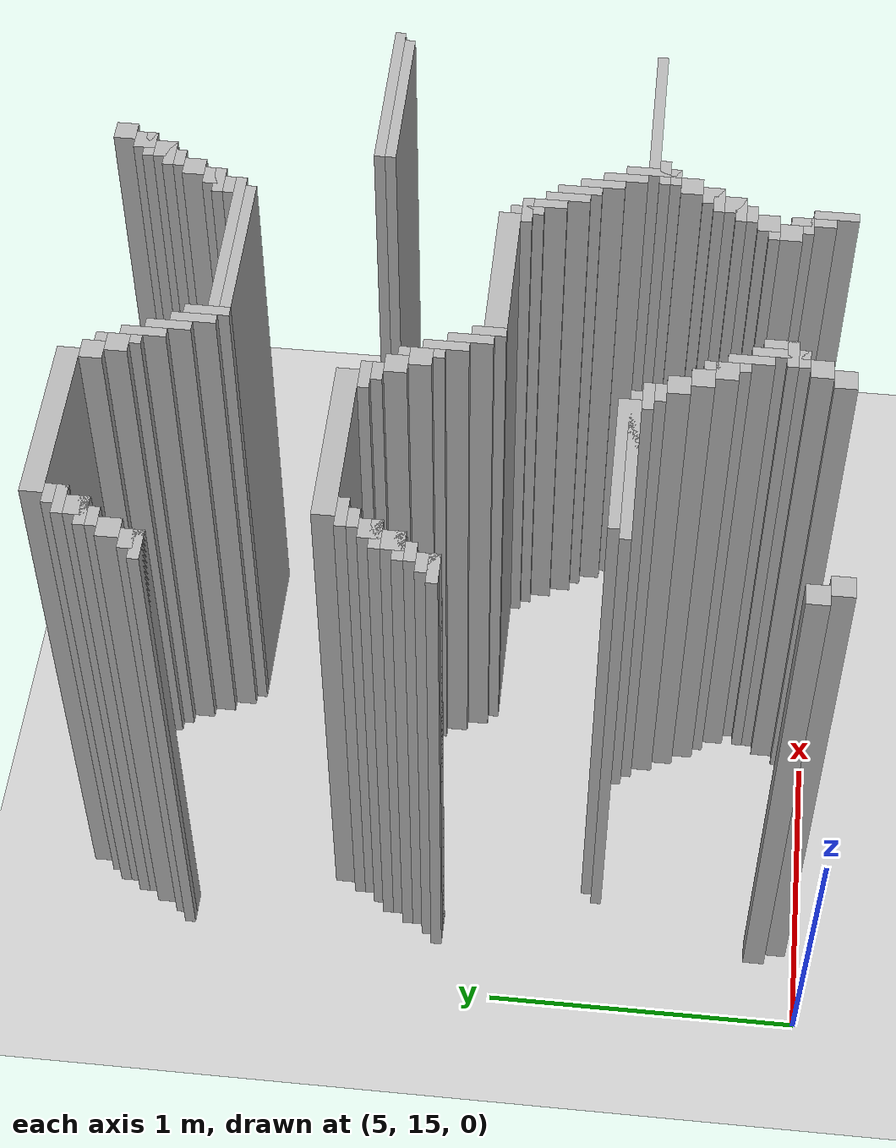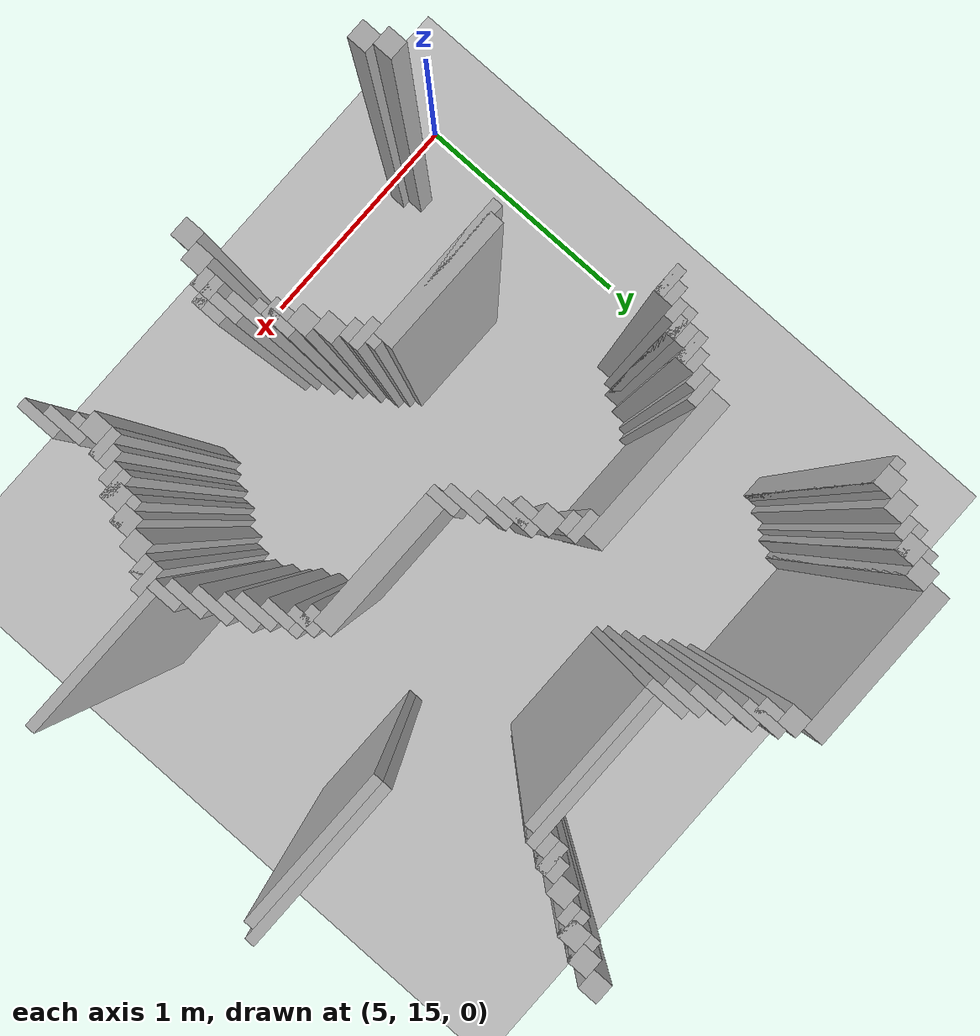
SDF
<sdf version="1.6">
 <world name="slam_world">
  <model name="ground_plane">
   <static>true</static>
   <link name="link">
    <collision name="collision">
     <geometry><plane><normal>0 0 1</normal><size>100 100</size></plane></geometry>
    </collision>
    <visual name="visual">
     <geometry><plane><normal>0 0 1</normal><size>100 100</size></plane></geometry>
     <material>
      <ambient>0.8 0.8 0.8 1</ambient>
      <diffuse>0.8 0.8 0.8 1</diffuse>
      <specular>0.8 0.8 0.8 1</specular>
     </material>
    </visual>
   </link>
  </model>
  <model name="wall_3">
   <static>true</static>
   <pose>5.672853828306264 17.366589327146173 1.0 0 0 0</pose>
   <link name="link">
    <collision name="collision">
     <geometry><box><size>0.5568445475638051 0.06960556844547564 2.0</size></box></geometry>
    </collision>
    <visual name="visual">
     <geometry><box><size>0.5568445475638051 0.06960556844547564 2.0</size></box></geometry>
     <material><ambient>0.5 0.5 0.5 1</ambient><diffuse>0.7 0.7 0.7 1</diffuse></material>
    </visual>
   </link>
  </model>
  <model name="wall_4">
   <static>true</static>
   <pose>6.890951276102088 17.366589327146173 1.0 0 0 0</pose>
   <link name="link">
    <collision name="collision">
     <geometry><box><size>0.06960556844547564 0.06960556844547564 2.0</size></box></geometry>
    </collision>
    <visual name="visual">
     <geometry><box><size>0.06960556844547564 0.06960556844547564 2.0</size></box></geometry>
     <material><ambient>0.5 0.5 0.5 1</ambient><diffuse>0.7 0.7 0.7 1</diffuse></material>
    </visual>
   </link>
  </model>
  <model name="wall_17">
   <static>true</static>
   <pose>5.3944315545243615 17.296983758700694 1.0 0 0 0</pose>
   <link name="link">
    <collision name="collision">
     <geometry><box><size>0.06960556844547564 0.06960556844547564 2.0</size></box></geometry>
    </collision>
    <visual name="visual">
     <geometry><box><size>0.06960556844547564 0.06960556844547564 2.0</size></box></geometry>
     <material><ambient>0.5 0.5 0.5 1</ambient><diffuse>0.7 0.7 0.7 1</diffuse></material>
    </visual>
   </link>
  </model>
  <model name="wall_18">
   <static>true</static>
   <pose>5.951276102088166 17.296983758700694 1.0 0 0 0</pose>
   <link name="link">
    <collision name="collision">
     <geometry><box><size>0.06960556844547564 0.06960556844547564 2.0</size></box></geometry>
    </collision>
    <visual name="visual">
     <geometry><box><size>0.06960556844547564 0.06960556844547564 2.0</size></box></geometry>
     <material><ambient>0.5 0.5 0.5 1</ambient><diffuse>0.7 0.7 0.7 1</diffuse></material>
    </visual>
   </link>
  </model>
  <model name="wall_19">
   <static>true</static>
   <pose>6.85614849187935 17.296983758700694 1.0 0 0 0</pose>
   <link name="link">
    <collision name="collision">
     <geometry><box><size>0.06960556844547564 0.06960556844547564 2.0</size></box></geometry>
    </collision>
    <visual name="visual">
     <geometry><box><size>0.06960556844547564 0.06960556844547564 2.0</size></box></geometry>
     <material><ambient>0.5 0.5 0.5 1</ambient><diffuse>0.7 0.7 0.7 1</diffuse></material>
    </visual>
   </link>
  </model>
  <model name="wall_37">
   <static>true</static>
   <pose>5.377030162412993 17.279582366589327 1.0 0 0 0</pose>
   <link name="link">
    <collision name="collision">
     <geometry><box><size>0.10440835266821345 0.03480278422273782 2.0</size></box></geometry>
    </collision>
    <visual name="visual">
     <geometry><box><size>0.10440835266821345 0.03480278422273782 2.0</size></box></geometry>
     <material><ambient>0.5 0.5 0.5 1</ambient><diffuse>0.7 0.7 0.7 1</diffuse></material>
    </visual>
   </link>
  </model>
  <model name="wall_38">
   <static>true</static>
   <pose>6.003480278422273 17.22737819025522 1.0 0 0 0</pose>
   <link name="link">
    <collision name="collision">
     <geometry><box><size>0.03480278422273782 0.13921113689095127 2.0</size></box></geometry>
    </collision>
    <visual name="visual">
     <geometry><box><size>0.03480278422273782 0.13921113689095127 2.0</size></box></geometry>
     <material><ambient>0.5 0.5 0.5 1</ambient><diffuse>0.7 0.7 0.7 1</diffuse></material>
    </visual>
   </link>
  </model>
  <model name="wall_39">
   <static>true</static>
   <pose>6.838747099767981 17.279582366589327 1.0 0 0 0</pose>
   <link name="link">
    <collision name="collision">
     <geometry><box><size>0.10440835266821345 0.03480278422273782 2.0</size></box></geometry>
    </collision>
    <visual name="visual">
     <geometry><box><size>0.10440835266821345 0.03480278422273782 2.0</size></box></geometry>
     <material><ambient>0.5 0.5 0.5 1</ambient><diffuse>0.7 0.7 0.7 1</diffuse></material>
    </visual>
   </link>
  </model>
  <model name="wall_57">
   <static>true</static>
   <pose>5.359628770301624 17.22737819025522 1.0 0 0 0</pose>
   <link name="link">
    <collision name="collision">
     <geometry><box><size>0.06960556844547564 0.06960556844547564 2.0</size></box></geometry>
    </collision>
    <visual name="visual">
     <geometry><box><size>0.06960556844547564 0.06960556844547564 2.0</size></box></geometry>
     <material><ambient>0.5 0.5 0.5 1</ambient><diffuse>0.7 0.7 0.7 1</diffuse></material>
    </visual>
   </link>
  </model>
  <model name="wall_58">
   <static>true</static>
   <pose>5.986078886310905 17.22737819025522 1.0 0 0 0</pose>
   <link name="link">
    <collision name="collision">
     <geometry><box><size>0.06960556844547564 0.06960556844547564 2.0</size></box></geometry>
    </collision>
    <visual name="visual">
     <geometry><box><size>0.06960556844547564 0.06960556844547564 2.0</size></box></geometry>
     <material><ambient>0.5 0.5 0.5 1</ambient><diffuse>0.7 0.7 0.7 1</diffuse></material>
    </visual>
   </link>
  </model>
  <model name="wall_59">
   <static>true</static>
   <pose>6.821345707656612 17.22737819025522 1.0 0 0 0</pose>
   <link name="link">
    <collision name="collision">
     <geometry><box><size>0.06960556844547564 0.06960556844547564 2.0</size></box></geometry>
    </collision>
    <visual name="visual">
     <geometry><box><size>0.06960556844547564 0.06960556844547564 2.0</size></box></geometry>
     <material><ambient>0.5 0.5 0.5 1</ambient><diffuse>0.7 0.7 0.7 1</diffuse></material>
    </visual>
   </link>
  </model>
  <model name="wall_77">
   <static>true</static>
   <pose>5.342227378190255 17.209976798143853 1.0 0 0 0</pose>
   <link name="link">
    <collision name="collision">
     <geometry><box><size>0.10440835266821345 0.03480278422273782 2.0</size></box></geometry>
    </collision>
    <visual name="visual">
     <geometry><box><size>0.10440835266821345 0.03480278422273782 2.0</size></box></geometry>
     <material><ambient>0.5 0.5 0.5 1</ambient><diffuse>0.7 0.7 0.7 1</diffuse></material>
    </visual>
   </link>
  </model>
  <model name="wall_78">
   <static>true</static>
   <pose>6.038283062645012 17.157772621809745 1.0 0 0 0</pose>
   <link name="link">
    <collision name="collision">
     <geometry><box><size>0.03480278422273782 0.13921113689095127 2.0</size></box></geometry>
    </collision>
    <visual name="visual">
     <geometry><box><size>0.03480278422273782 0.13921113689095127 2.0</size></box></geometry>
     <material><ambient>0.5 0.5 0.5 1</ambient><diffuse>0.7 0.7 0.7 1</diffuse></material>
    </visual>
   </link>
  </model>
  <model name="wall_79">
   <static>true</static>
   <pose>6.803944315545244 17.209976798143853 1.0 0 0 0</pose>
   <link name="link">
    <collision name="collision">
     <geometry><box><size>0.10440835266821345 0.03480278422273782 2.0</size></box></geometry>
    </collision>
    <visual name="visual">
     <geometry><box><size>0.10440835266821345 0.03480278422273782 2.0</size></box></geometry>
     <material><ambient>0.5 0.5 0.5 1</ambient><diffuse>0.7 0.7 0.7 1</diffuse></material>
    </visual>
   </link>
  </model>
  <model name="wall_94">
   <static>true</static>
   <pose>5.324825986078886 17.17517401392111 1.0 0 0 0</pose>
   <link name="link">
    <collision name="collision">
     <geometry><box><size>0.06960556844547564 0.03480278422273782 2.0</size></box></geometry>
    </collision>
    <visual name="visual">
     <geometry><box><size>0.06960556844547564 0.03480278422273782 2.0</size></box></geometry>
     <material><ambient>0.5 0.5 0.5 1</ambient><diffuse>0.7 0.7 0.7 1</diffuse></material>
    </visual>
   </link>
  </model>
  <model name="wall_95">
   <static>true</static>
   <pose>6.786542923433874 17.17517401392111 1.0 0 0 0</pose>
   <link name="link">
    <collision name="collision">
     <geometry><box><size>0.06960556844547564 0.03480278422273782 2.0</size></box></geometry>
    </collision>
    <visual name="visual">
     <geometry><box><size>0.06960556844547564 0.03480278422273782 2.0</size></box></geometry>
     <material><ambient>0.5 0.5 0.5 1</ambient><diffuse>0.7 0.7 0.7 1</diffuse></material>
    </visual>
   </link>
  </model>
  <model name="wall_107">
   <static>true</static>
   <pose>5.290023201856148 17.122969837587007 1.0 0 0 0</pose>
   <link name="link">
    <collision name="collision">
     <geometry><box><size>0.06960556844547564 0.06960556844547564 2.0</size></box></geometry>
    </collision>
    <visual name="visual">
     <geometry><box><size>0.06960556844547564 0.06960556844547564 2.0</size></box></geometry>
     <material><ambient>0.5 0.5 0.5 1</ambient><diffuse>0.7 0.7 0.7 1</diffuse></material>
    </visual>
   </link>
  </model>
  <model name="wall_108">
   <static>true</static>
   <pose>6.073085846867749 17.08816705336427 1.0 0 0 0</pose>
   <link name="link">
    <collision name="collision">
     <geometry><box><size>0.03480278422273782 0.13921113689095127 2.0</size></box></geometry>
    </collision>
    <visual name="visual">
     <geometry><box><size>0.03480278422273782 0.13921113689095127 2.0</size></box></geometry>
     <material><ambient>0.5 0.5 0.5 1</ambient><diffuse>0.7 0.7 0.7 1</diffuse></material>
    </visual>
   </link>
  </model>
  <model name="wall_109">
   <static>true</static>
   <pose>6.751740139211137 17.122969837587007 1.0 0 0 0</pose>
   <link name="link">
    <collision name="collision">
     <geometry><box><size>0.06960556844547564 0.06960556844547564 2.0</size></box></geometry>
    </collision>
    <visual name="visual">
     <geometry><box><size>0.06960556844547564 0.06960556844547564 2.0</size></box></geometry>
     <material><ambient>0.5 0.5 0.5 1</ambient><diffuse>0.7 0.7 0.7 1</diffuse></material>
    </visual>
   </link>
  </model>
  <model name="wall_127">
   <static>true</static>
   <pose>5.25522041763341 17.053364269141532 1.0 0 0 0</pose>
   <link name="link">
    <collision name="collision">
     <geometry><box><size>0.06960556844547564 0.06960556844547564 2.0</size></box></geometry>
    </collision>
    <visual name="visual">
     <geometry><box><size>0.06960556844547564 0.06960556844547564 2.0</size></box></geometry>
     <material><ambient>0.5 0.5 0.5 1</ambient><diffuse>0.7 0.7 0.7 1</diffuse></material>
    </visual>
   </link>
  </model>
  <model name="wall_128">
   <static>true</static>
   <pose>6.107888631090487 17.01856148491879 1.0 0 0 0</pose>
   <link name="link">
    <collision name="collision">
     <geometry><box><size>0.03480278422273782 0.13921113689095127 2.0</size></box></geometry>
    </collision>
    <visual name="visual">
     <geometry><box><size>0.03480278422273782 0.13921113689095127 2.0</size></box></geometry>
     <material><ambient>0.5 0.5 0.5 1</ambient><diffuse>0.7 0.7 0.7 1</diffuse></material>
    </visual>
   </link>
  </model>
  <model name="wall_129">
   <static>true</static>
   <pose>6.716937354988398 17.053364269141532 1.0 0 0 0</pose>
   <link name="link">
    <collision name="collision">
     <geometry><box><size>0.06960556844547564 0.06960556844547564 2.0</size></box></geometry>
    </collision>
    <visual name="visual">
     <geometry><box><size>0.06960556844547564 0.06960556844547564 2.0</size></box></geometry>
     <material><ambient>0.5 0.5 0.5 1</ambient><diffuse>0.7 0.7 0.7 1</diffuse></material>
    </visual>
   </link>
  </model>
  <model name="wall_147">
   <static>true</static>
   <pose>5.237819025522041 17.035962877030162 1.0 0 0 0</pose>
   <link name="link">
    <collision name="collision">
     <geometry><box><size>0.10440835266821345 0.03480278422273782 2.0</size></box></geometry>
    </collision>
    <visual name="visual">
     <geometry><box><size>0.10440835266821345 0.03480278422273782 2.0</size></box></geometry>
     <material><ambient>0.5 0.5 0.5 1</ambient><diffuse>0.7 0.7 0.7 1</diffuse></material>
    </visual>
   </link>
  </model>
  <model name="wall_148">
   <static>true</static>
   <pose>6.142691415313225 16.983758700696054 1.0 0 0 0</pose>
   <link name="link">
    <collision name="collision">
     <geometry><box><size>0.03480278422273782 0.13921113689095127 2.0</size></box></geometry>
    </collision>
    <visual name="visual">
     <geometry><box><size>0.03480278422273782 0.13921113689095127 2.0</size></box></geometry>
     <material><ambient>0.5 0.5 0.5 1</ambient><diffuse>0.7 0.7 0.7 1</diffuse></material>
    </visual>
   </link>
  </model>
  <model name="wall_149">
   <static>true</static>
   <pose>6.69953596287703 17.035962877030162 1.0 0 0 0</pose>
   <link name="link">
    <collision name="collision">
     <geometry><box><size>0.10440835266821345 0.03480278422273782 2.0</size></box></geometry>
    </collision>
    <visual name="visual">
     <geometry><box><size>0.10440835266821345 0.03480278422273782 2.0</size></box></geometry>
     <material><ambient>0.5 0.5 0.5 1</ambient><diffuse>0.7 0.7 0.7 1</diffuse></material>
    </visual>
   </link>
  </model>
  <model name="wall_165">
   <static>true</static>
   <pose>6.682134570765661 16.983758700696054 1.0 0 0 0</pose>
   <link name="link">
    <collision name="collision">
     <geometry><box><size>0.06960556844547564 0.06960556844547564 2.0</size></box></geometry>
    </collision>
    <visual name="visual">
     <geometry><box><size>0.06960556844547564 0.06960556844547564 2.0</size></box></geometry>
     <material><ambient>0.5 0.5 0.5 1</ambient><diffuse>0.7 0.7 0.7 1</diffuse></material>
    </visual>
   </link>
  </model>
  <model name="wall_175">
   <static>true</static>
   <pose>6.438515081206496 16.966357308584687 1.0 0 0 0</pose>
   <link name="link">
    <collision name="collision">
     <geometry><box><size>0.5568445475638051 0.03480278422273782 2.0</size></box></geometry>
    </collision>
    <visual name="visual">
     <geometry><box><size>0.5568445475638051 0.03480278422273782 2.0</size></box></geometry>
     <material><ambient>0.5 0.5 0.5 1</ambient><diffuse>0.7 0.7 0.7 1</diffuse></material>
    </visual>
   </link>
  </model>
  <model name="wall_186">
   <static>true</static>
   <pose>6.421113689095128 16.93155452436195 1.0 0 0 0</pose>
   <link name="link">
    <collision name="collision">
     <geometry><box><size>0.5220417633410672 0.03480278422273782 2.0</size></box></geometry>
    </collision>
    <visual name="visual">
     <geometry><box><size>0.5220417633410672 0.03480278422273782 2.0</size></box></geometry>
     <material><ambient>0.5 0.5 0.5 1</ambient><diffuse>0.7 0.7 0.7 1</diffuse></material>
    </visual>
   </link>
  </model>
  <model name="wall_262">
   <static>true</static>
   <pose>5.672853828306264 16.531322505800464 1.0 0 0 0</pose>
   <link name="link">
    <collision name="collision">
     <geometry><box><size>0.5568445475638051 0.06960556844547564 2.0</size></box></geometry>
    </collision>
    <visual name="visual">
     <geometry><box><size>0.5568445475638051 0.06960556844547564 2.0</size></box></geometry>
     <material><ambient>0.5 0.5 0.5 1</ambient><diffuse>0.7 0.7 0.7 1</diffuse></material>
    </visual>
   </link>
  </model>
  <model name="wall_263">
   <static>true</static>
   <pose>7.151972157772621 16.54872389791183 1.0 0 0 0</pose>
   <link name="link">
    <collision name="collision">
     <geometry><box><size>0.5916473317865429 0.03480278422273782 2.0</size></box></geometry>
    </collision>
    <visual name="visual">
     <geometry><box><size>0.5916473317865429 0.03480278422273782 2.0</size></box></geometry>
     <material><ambient>0.5 0.5 0.5 1</ambient><diffuse>0.7 0.7 0.7 1</diffuse></material>
    </visual>
   </link>
  </model>
  <model name="wall_274">
   <static>true</static>
   <pose>7.134570765661253 16.513921113689094 1.0 0 0 0</pose>
   <link name="link">
    <collision name="collision">
     <geometry><box><size>0.5568445475638051 0.03480278422273782 2.0</size></box></geometry>
    </collision>
    <visual name="visual">
     <geometry><box><size>0.5568445475638051 0.03480278422273782 2.0</size></box></geometry>
     <material><ambient>0.5 0.5 0.5 1</ambient><diffuse>0.7 0.7 0.7 1</diffuse></material>
    </visual>
   </link>
  </model>
  <model name="wall_283">
   <static>true</static>
   <pose>5.41183294663573 16.479118329466356 1.0 0 0 0</pose>
   <link name="link">
    <collision name="collision">
     <geometry><box><size>0.10440835266821345 0.03480278422273782 2.0</size></box></geometry>
    </collision>
    <visual name="visual">
     <geometry><box><size>0.10440835266821345 0.03480278422273782 2.0</size></box></geometry>
     <material><ambient>0.5 0.5 0.5 1</ambient><diffuse>0.7 0.7 0.7 1</diffuse></material>
    </visual>
   </link>
  </model>
  <model name="wall_284">
   <static>true</static>
   <pose>5.933874709976798 16.479118329466356 1.0 0 0 0</pose>
   <link name="link">
    <collision name="collision">
     <geometry><box><size>0.10440835266821345 0.03480278422273782 2.0</size></box></geometry>
    </collision>
    <visual name="visual">
     <geometry><box><size>0.10440835266821345 0.03480278422273782 2.0</size></box></geometry>
     <material><ambient>0.5 0.5 0.5 1</ambient><diffuse>0.7 0.7 0.7 1</diffuse></material>
    </visual>
   </link>
  </model>
  <model name="wall_296">
   <static>true</static>
   <pose>5.3944315545243615 16.44431554524362 1.0 0 0 0</pose>
   <link name="link">
    <collision name="collision">
     <geometry><box><size>0.06960556844547564 0.03480278422273782 2.0</size></box></geometry>
    </collision>
    <visual name="visual">
     <geometry><box><size>0.06960556844547564 0.03480278422273782 2.0</size></box></geometry>
     <material><ambient>0.5 0.5 0.5 1</ambient><diffuse>0.7 0.7 0.7 1</diffuse></material>
    </visual>
   </link>
  </model>
  <model name="wall_297">
   <static>true</static>
   <pose>5.951276102088166 16.44431554524362 1.0 0 0 0</pose>
   <link name="link">
    <collision name="collision">
     <geometry><box><size>0.06960556844547564 0.03480278422273782 2.0</size></box></geometry>
    </collision>
    <visual name="visual">
     <geometry><box><size>0.06960556844547564 0.03480278422273782 2.0</size></box></geometry>
     <material><ambient>0.5 0.5 0.5 1</ambient><diffuse>0.7 0.7 0.7 1</diffuse></material>
    </visual>
   </link>
  </model>
  <model name="wall_306">
   <static>true</static>
   <pose>5.359628770301624 16.39211136890951 1.0 0 0 0</pose>
   <link name="link">
    <collision name="collision">
     <geometry><box><size>0.06960556844547564 0.06960556844547564 2.0</size></box></geometry>
    </collision>
    <visual name="visual">
     <geometry><box><size>0.06960556844547564 0.06960556844547564 2.0</size></box></geometry>
     <material><ambient>0.5 0.5 0.5 1</ambient><diffuse>0.7 0.7 0.7 1</diffuse></material>
    </visual>
   </link>
  </model>
  <model name="wall_307">
   <static>true</static>
   <pose>5.986078886310905 16.39211136890951 1.0 0 0 0</pose>
   <link name="link">
    <collision name="collision">
     <geometry><box><size>0.06960556844547564 0.06960556844547564 2.0</size></box></geometry>
    </collision>
    <visual name="visual">
     <geometry><box><size>0.06960556844547564 0.06960556844547564 2.0</size></box></geometry>
     <material><ambient>0.5 0.5 0.5 1</ambient><diffuse>0.7 0.7 0.7 1</diffuse></material>
    </visual>
   </link>
  </model>
  <model name="wall_323">
   <static>true</static>
   <pose>5.342227378190255 16.374709976798144 1.0 0 0 0</pose>
   <link name="link">
    <collision name="collision">
     <geometry><box><size>0.10440835266821345 0.03480278422273782 2.0</size></box></geometry>
    </collision>
    <visual name="visual">
     <geometry><box><size>0.10440835266821345 0.03480278422273782 2.0</size></box></geometry>
     <material><ambient>0.5 0.5 0.5 1</ambient><diffuse>0.7 0.7 0.7 1</diffuse></material>
    </visual>
   </link>
  </model>
  <model name="wall_324">
   <static>true</static>
   <pose>6.038283062645012 16.322505800464036 1.0 0 0 0</pose>
   <link name="link">
    <collision name="collision">
     <geometry><box><size>0.03480278422273782 0.13921113689095127 2.0</size></box></geometry>
    </collision>
    <visual name="visual">
     <geometry><box><size>0.03480278422273782 0.13921113689095127 2.0</size></box></geometry>
     <material><ambient>0.5 0.5 0.5 1</ambient><diffuse>0.7 0.7 0.7 1</diffuse></material>
    </visual>
   </link>
  </model>
  <model name="wall_340">
   <static>true</static>
   <pose>5.324825986078886 16.322505800464036 1.0 0 0 0</pose>
   <link name="link">
    <collision name="collision">
     <geometry><box><size>0.06960556844547564 0.06960556844547564 2.0</size></box></geometry>
    </collision>
    <visual name="visual">
     <geometry><box><size>0.06960556844547564 0.06960556844547564 2.0</size></box></geometry>
     <material><ambient>0.5 0.5 0.5 1</ambient><diffuse>0.7 0.7 0.7 1</diffuse></material>
    </visual>
   </link>
  </model>
  <model name="wall_341">
   <static>true</static>
   <pose>6.020881670533642 16.322505800464036 1.0 0 0 0</pose>
   <link name="link">
    <collision name="collision">
     <geometry><box><size>0.06960556844547564 0.06960556844547564 2.0</size></box></geometry>
    </collision>
    <visual name="visual">
     <geometry><box><size>0.06960556844547564 0.06960556844547564 2.0</size></box></geometry>
     <material><ambient>0.5 0.5 0.5 1</ambient><diffuse>0.7 0.7 0.7 1</diffuse></material>
    </visual>
   </link>
  </model>
  <model name="wall_357">
   <static>true</static>
   <pose>5.307424593967517 16.30510440835267 1.0 0 0 0</pose>
   <link name="link">
    <collision name="collision">
     <geometry><box><size>0.10440835266821345 0.03480278422273782 2.0</size></box></geometry>
    </collision>
    <visual name="visual">
     <geometry><box><size>0.10440835266821345 0.03480278422273782 2.0</size></box></geometry>
     <material><ambient>0.5 0.5 0.5 1</ambient><diffuse>0.7 0.7 0.7 1</diffuse></material>
    </visual>
   </link>
  </model>
  <model name="wall_358">
   <static>true</static>
   <pose>6.073085846867749 16.25290023201856 1.0 0 0 0</pose>
   <link name="link">
    <collision name="collision">
     <geometry><box><size>0.03480278422273782 0.13921113689095127 2.0</size></box></geometry>
    </collision>
    <visual name="visual">
     <geometry><box><size>0.03480278422273782 0.13921113689095127 2.0</size></box></geometry>
     <material><ambient>0.5 0.5 0.5 1</ambient><diffuse>0.7 0.7 0.7 1</diffuse></material>
    </visual>
   </link>
  </model>
  <model name="wall_370">
   <static>true</static>
   <pose>5.290023201856148 16.270301624129928 1.0 0 0 0</pose>
   <link name="link">
    <collision name="collision">
     <geometry><box><size>0.06960556844547564 0.03480278422273782 2.0</size></box></geometry>
    </collision>
    <visual name="visual">
     <geometry><box><size>0.06960556844547564 0.03480278422273782 2.0</size></box></geometry>
     <material><ambient>0.5 0.5 0.5 1</ambient><diffuse>0.7 0.7 0.7 1</diffuse></material>
    </visual>
   </link>
  </model>
  <model name="wall_382">
   <static>true</static>
   <pose>5.25522041763341 16.218097447795824 1.0 0 0 0</pose>
   <link name="link">
    <collision name="collision">
     <geometry><box><size>0.06960556844547564 0.06960556844547564 2.0</size></box></geometry>
    </collision>
    <visual name="visual">
     <geometry><box><size>0.06960556844547564 0.06960556844547564 2.0</size></box></geometry>
     <material><ambient>0.5 0.5 0.5 1</ambient><diffuse>0.7 0.7 0.7 1</diffuse></material>
    </visual>
   </link>
  </model>
  <model name="wall_383">
   <static>true</static>
   <pose>6.107888631090487 16.183294663573086 1.0 0 0 0</pose>
   <link name="link">
    <collision name="collision">
     <geometry><box><size>0.03480278422273782 0.13921113689095127 2.0</size></box></geometry>
    </collision>
    <visual name="visual">
     <geometry><box><size>0.03480278422273782 0.13921113689095127 2.0</size></box></geometry>
     <material><ambient>0.5 0.5 0.5 1</ambient><diffuse>0.7 0.7 0.7 1</diffuse></material>
    </visual>
   </link>
  </model>
  <model name="wall_395">
   <static>true</static>
   <pose>5.237819025522041 16.200696055684453 1.0 0 0 0</pose>
   <link name="link">
    <collision name="collision">
     <geometry><box><size>0.10440835266821345 0.03480278422273782 2.0</size></box></geometry>
    </collision>
    <visual name="visual">
     <geometry><box><size>0.10440835266821345 0.03480278422273782 2.0</size></box></geometry>
     <material><ambient>0.5 0.5 0.5 1</ambient><diffuse>0.7 0.7 0.7 1</diffuse></material>
    </visual>
   </link>
  </model>
  <model name="wall_408">
   <static>true</static>
   <pose>6.142691415313225 16.13109048723898 1.0 0 0 0</pose>
   <link name="link">
    <collision name="collision">
     <geometry><box><size>0.03480278422273782 0.10440835266821345 2.0</size></box></geometry>
    </collision>
    <visual name="visual">
     <geometry><box><size>0.03480278422273782 0.10440835266821345 2.0</size></box></geometry>
     <material><ambient>0.5 0.5 0.5 1</ambient><diffuse>0.7 0.7 0.7 1</diffuse></material>
    </visual>
   </link>
  </model>
  <model name="wall_424">
   <static>true</static>
   <pose>6.403712296983758 16.113689095127608 1.0 0 0 0</pose>
   <link name="link">
    <collision name="collision">
     <geometry><box><size>0.4872389791183295 0.06960556844547564 2.0</size></box></geometry>
    </collision>
    <visual name="visual">
     <geometry><box><size>0.4872389791183295 0.06960556844547564 2.0</size></box></geometry>
     <material><ambient>0.5 0.5 0.5 1</ambient><diffuse>0.7 0.7 0.7 1</diffuse></material>
    </visual>
   </link>
  </model>
  <model name="wall_435">
   <static>true</static>
   <pose>6.664733178654292 16.061484918793504 1.0 0 0 0</pose>
   <link name="link">
    <collision name="collision">
     <geometry><box><size>0.03480278422273782 0.10440835266821345 2.0</size></box></geometry>
    </collision>
    <visual name="visual">
     <geometry><box><size>0.03480278422273782 0.10440835266821345 2.0</size></box></geometry>
     <material><ambient>0.5 0.5 0.5 1</ambient><diffuse>0.7 0.7 0.7 1</diffuse></material>
    </visual>
   </link>
  </model>
  <model name="wall_448">
   <static>true</static>
   <pose>6.664733178654292 16.061484918793504 1.0 0 0 0</pose>
   <link name="link">
    <collision name="collision">
     <geometry><box><size>0.10440835266821345 0.03480278422273782 2.0</size></box></geometry>
    </collision>
    <visual name="visual">
     <geometry><box><size>0.10440835266821345 0.03480278422273782 2.0</size></box></geometry>
     <material><ambient>0.5 0.5 0.5 1</ambient><diffuse>0.7 0.7 0.7 1</diffuse></material>
    </visual>
   </link>
  </model>
  <model name="wall_461">
   <static>true</static>
   <pose>6.69953596287703 15.991879350348027 1.0 0 0 0</pose>
   <link name="link">
    <collision name="collision">
     <geometry><box><size>0.03480278422273782 0.10440835266821345 2.0</size></box></geometry>
    </collision>
    <visual name="visual">
     <geometry><box><size>0.03480278422273782 0.10440835266821345 2.0</size></box></geometry>
     <material><ambient>0.5 0.5 0.5 1</ambient><diffuse>0.7 0.7 0.7 1</diffuse></material>
    </visual>
   </link>
  </model>
  <model name="wall_474">
   <static>true</static>
   <pose>6.734338747099768 15.93967517401392 1.0 0 0 0</pose>
   <link name="link">
    <collision name="collision">
     <geometry><box><size>0.03480278422273782 0.13921113689095127 2.0</size></box></geometry>
    </collision>
    <visual name="visual">
     <geometry><box><size>0.03480278422273782 0.13921113689095127 2.0</size></box></geometry>
     <material><ambient>0.5 0.5 0.5 1</ambient><diffuse>0.7 0.7 0.7 1</diffuse></material>
    </visual>
   </link>
  </model>
  <model name="wall_487">
   <static>true</static>
   <pose>6.769141531322505 15.904872389791183 1.0 0 0 0</pose>
   <link name="link">
    <collision name="collision">
     <geometry><box><size>0.03480278422273782 0.13921113689095127 2.0</size></box></geometry>
    </collision>
    <visual name="visual">
     <geometry><box><size>0.03480278422273782 0.13921113689095127 2.0</size></box></geometry>
     <material><ambient>0.5 0.5 0.5 1</ambient><diffuse>0.7 0.7 0.7 1</diffuse></material>
    </visual>
   </link>
  </model>
  <model name="wall_509">
   <static>true</static>
   <pose>6.803944315545244 15.835266821345707 1.0 0 0 0</pose>
   <link name="link">
    <collision name="collision">
     <geometry><box><size>0.03480278422273782 0.13921113689095127 2.0</size></box></geometry>
    </collision>
    <visual name="visual">
     <geometry><box><size>0.03480278422273782 0.13921113689095127 2.0</size></box></geometry>
     <material><ambient>0.5 0.5 0.5 1</ambient><diffuse>0.7 0.7 0.7 1</diffuse></material>
    </visual>
   </link>
  </model>
  <model name="wall_529">
   <static>true</static>
   <pose>6.838747099767981 15.765661252900232 1.0 0 0 0</pose>
   <link name="link">
    <collision name="collision">
     <geometry><box><size>0.03480278422273782 0.13921113689095127 2.0</size></box></geometry>
    </collision>
    <visual name="visual">
     <geometry><box><size>0.03480278422273782 0.13921113689095127 2.0</size></box></geometry>
     <material><ambient>0.5 0.5 0.5 1</ambient><diffuse>0.7 0.7 0.7 1</diffuse></material>
    </visual>
   </link>
  </model>
  <model name="wall_542">
   <static>true</static>
   <pose>6.8735498839907185 15.678654292343387 1.0 0 0 0</pose>
   <link name="link">
    <collision name="collision">
     <geometry><box><size>0.03480278422273782 0.17401392111368907 2.0</size></box></geometry>
    </collision>
    <visual name="visual">
     <geometry><box><size>0.03480278422273782 0.17401392111368907 2.0</size></box></geometry>
     <material><ambient>0.5 0.5 0.5 1</ambient><diffuse>0.7 0.7 0.7 1</diffuse></material>
    </visual>
   </link>
  </model>
  <model name="wall_554">
   <static>true</static>
   <pose>5.672853828306264 15.696055684454755 1.0 0 0 0</pose>
   <link name="link">
    <collision name="collision">
     <geometry><box><size>0.4872389791183295 0.06960556844547564 2.0</size></box></geometry>
    </collision>
    <visual name="visual">
     <geometry><box><size>0.4872389791183295 0.06960556844547564 2.0</size></box></geometry>
     <material><ambient>0.5 0.5 0.5 1</ambient><diffuse>0.7 0.7 0.7 1</diffuse></material>
    </visual>
   </link>
  </model>
  <model name="wall_566">
   <static>true</static>
   <pose>5.672853828306264 15.678654292343387 1.0 0 0 0</pose>
   <link name="link">
    <collision name="collision">
     <geometry><box><size>0.5568445475638051 0.03480278422273782 2.0</size></box></geometry>
    </collision>
    <visual name="visual">
     <geometry><box><size>0.5568445475638051 0.03480278422273782 2.0</size></box></geometry>
     <material><ambient>0.5 0.5 0.5 1</ambient><diffuse>0.7 0.7 0.7 1</diffuse></material>
    </visual>
   </link>
  </model>
  <model name="wall_567">
   <static>true</static>
   <pose>7.151972157772621 15.678654292343387 1.0 0 0 0</pose>
   <link name="link">
    <collision name="collision">
     <geometry><box><size>0.5220417633410672 0.03480278422273782 2.0</size></box></geometry>
    </collision>
    <visual name="visual">
     <geometry><box><size>0.5220417633410672 0.03480278422273782 2.0</size></box></geometry>
     <material><ambient>0.5 0.5 0.5 1</ambient><diffuse>0.7 0.7 0.7 1</diffuse></material>
    </visual>
   </link>
  </model>
  <model name="wall_580">
   <static>true</static>
   <pose>5.933874709976798 15.64385150812065 1.0 0 0 0</pose>
   <link name="link">
    <collision name="collision">
     <geometry><box><size>0.10440835266821345 0.03480278422273782 2.0</size></box></geometry>
    </collision>
    <visual name="visual">
     <geometry><box><size>0.10440835266821345 0.03480278422273782 2.0</size></box></geometry>
     <material><ambient>0.5 0.5 0.5 1</ambient><diffuse>0.7 0.7 0.7 1</diffuse></material>
    </visual>
   </link>
  </model>
  <model name="wall_581">
   <static>true</static>
   <pose>6.8735498839907185 15.64385150812065 1.0 0 0 0</pose>
   <link name="link">
    <collision name="collision">
     <geometry><box><size>0.10440835266821345 0.03480278422273782 2.0</size></box></geometry>
    </collision>
    <visual name="visual">
     <geometry><box><size>0.10440835266821345 0.03480278422273782 2.0</size></box></geometry>
     <material><ambient>0.5 0.5 0.5 1</ambient><diffuse>0.7 0.7 0.7 1</diffuse></material>
    </visual>
   </link>
  </model>
  <model name="wall_598">
   <static>true</static>
   <pose>5.951276102088166 15.609048723897912 1.0 0 0 0</pose>
   <link name="link">
    <collision name="collision">
     <geometry><box><size>0.06960556844547564 0.03480278422273782 2.0</size></box></geometry>
    </collision>
    <visual name="visual">
     <geometry><box><size>0.06960556844547564 0.03480278422273782 2.0</size></box></geometry>
     <material><ambient>0.5 0.5 0.5 1</ambient><diffuse>0.7 0.7 0.7 1</diffuse></material>
    </visual>
   </link>
  </model>
  <model name="wall_599">
   <static>true</static>
   <pose>6.85614849187935 15.609048723897912 1.0 0 0 0</pose>
   <link name="link">
    <collision name="collision">
     <geometry><box><size>0.06960556844547564 0.03480278422273782 2.0</size></box></geometry>
    </collision>
    <visual name="visual">
     <geometry><box><size>0.06960556844547564 0.03480278422273782 2.0</size></box></geometry>
     <material><ambient>0.5 0.5 0.5 1</ambient><diffuse>0.7 0.7 0.7 1</diffuse></material>
    </visual>
   </link>
  </model>
  <model name="wall_614">
   <static>true</static>
   <pose>5.986078886310905 15.556844547563804 1.0 0 0 0</pose>
   <link name="link">
    <collision name="collision">
     <geometry><box><size>0.06960556844547564 0.06960556844547564 2.0</size></box></geometry>
    </collision>
    <visual name="visual">
     <geometry><box><size>0.06960556844547564 0.06960556844547564 2.0</size></box></geometry>
     <material><ambient>0.5 0.5 0.5 1</ambient><diffuse>0.7 0.7 0.7 1</diffuse></material>
    </visual>
   </link>
  </model>
  <model name="wall_615">
   <static>true</static>
   <pose>6.821345707656612 15.556844547563804 1.0 0 0 0</pose>
   <link name="link">
    <collision name="collision">
     <geometry><box><size>0.06960556844547564 0.06960556844547564 2.0</size></box></geometry>
    </collision>
    <visual name="visual">
     <geometry><box><size>0.06960556844547564 0.06960556844547564 2.0</size></box></geometry>
     <material><ambient>0.5 0.5 0.5 1</ambient><diffuse>0.7 0.7 0.7 1</diffuse></material>
    </visual>
   </link>
  </model>
  <model name="wall_630">
   <static>true</static>
   <pose>6.020881670533642 15.48723897911833 1.0 0 0 0</pose>
   <link name="link">
    <collision name="collision">
     <geometry><box><size>0.06960556844547564 0.06960556844547564 2.0</size></box></geometry>
    </collision>
    <visual name="visual">
     <geometry><box><size>0.06960556844547564 0.06960556844547564 2.0</size></box></geometry>
     <material><ambient>0.5 0.5 0.5 1</ambient><diffuse>0.7 0.7 0.7 1</diffuse></material>
    </visual>
   </link>
  </model>
  <model name="wall_631">
   <static>true</static>
   <pose>6.786542923433874 15.48723897911833 1.0 0 0 0</pose>
   <link name="link">
    <collision name="collision">
     <geometry><box><size>0.06960556844547564 0.06960556844547564 2.0</size></box></geometry>
    </collision>
    <visual name="visual">
     <geometry><box><size>0.06960556844547564 0.06960556844547564 2.0</size></box></geometry>
     <material><ambient>0.5 0.5 0.5 1</ambient><diffuse>0.7 0.7 0.7 1</diffuse></material>
    </visual>
   </link>
  </model>
  <model name="wall_646">
   <static>true</static>
   <pose>6.073085846867749 15.417633410672853 1.0 0 0 0</pose>
   <link name="link">
    <collision name="collision">
     <geometry><box><size>0.03480278422273782 0.13921113689095127 2.0</size></box></geometry>
    </collision>
    <visual name="visual">
     <geometry><box><size>0.03480278422273782 0.13921113689095127 2.0</size></box></geometry>
     <material><ambient>0.5 0.5 0.5 1</ambient><diffuse>0.7 0.7 0.7 1</diffuse></material>
    </visual>
   </link>
  </model>
  <model name="wall_647">
   <static>true</static>
   <pose>6.769141531322505 15.46983758700696 1.0 0 0 0</pose>
   <link name="link">
    <collision name="collision">
     <geometry><box><size>0.10440835266821345 0.03480278422273782 2.0</size></box></geometry>
    </collision>
    <visual name="visual">
     <geometry><box><size>0.10440835266821345 0.03480278422273782 2.0</size></box></geometry>
     <material><ambient>0.5 0.5 0.5 1</ambient><diffuse>0.7 0.7 0.7 1</diffuse></material>
    </visual>
   </link>
  </model>
  <model name="wall_659">
   <static>true</static>
   <pose>6.05568445475638 15.417633410672853 1.0 0 0 0</pose>
   <link name="link">
    <collision name="collision">
     <geometry><box><size>0.06960556844547564 0.06960556844547564 2.0</size></box></geometry>
    </collision>
    <visual name="visual">
     <geometry><box><size>0.06960556844547564 0.06960556844547564 2.0</size></box></geometry>
     <material><ambient>0.5 0.5 0.5 1</ambient><diffuse>0.7 0.7 0.7 1</diffuse></material>
    </visual>
   </link>
  </model>
  <model name="wall_660">
   <static>true</static>
   <pose>6.751740139211137 15.417633410672853 1.0 0 0 0</pose>
   <link name="link">
    <collision name="collision">
     <geometry><box><size>0.06960556844547564 0.06960556844547564 2.0</size></box></geometry>
    </collision>
    <visual name="visual">
     <geometry><box><size>0.06960556844547564 0.06960556844547564 2.0</size></box></geometry>
     <material><ambient>0.5 0.5 0.5 1</ambient><diffuse>0.7 0.7 0.7 1</diffuse></material>
    </visual>
   </link>
  </model>
  <model name="wall_672">
   <static>true</static>
   <pose>6.107888631090487 15.348027842227378 1.0 0 0 0</pose>
   <link name="link">
    <collision name="collision">
     <geometry><box><size>0.03480278422273782 0.13921113689095127 2.0</size></box></geometry>
    </collision>
    <visual name="visual">
     <geometry><box><size>0.03480278422273782 0.13921113689095127 2.0</size></box></geometry>
     <material><ambient>0.5 0.5 0.5 1</ambient><diffuse>0.7 0.7 0.7 1</diffuse></material>
    </visual>
   </link>
  </model>
  <model name="wall_673">
   <static>true</static>
   <pose>6.734338747099768 15.400232018561484 1.0 0 0 0</pose>
   <link name="link">
    <collision name="collision">
     <geometry><box><size>0.10440835266821345 0.03480278422273782 2.0</size></box></geometry>
    </collision>
    <visual name="visual">
     <geometry><box><size>0.10440835266821345 0.03480278422273782 2.0</size></box></geometry>
     <material><ambient>0.5 0.5 0.5 1</ambient><diffuse>0.7 0.7 0.7 1</diffuse></material>
    </visual>
   </link>
  </model>
  <model name="wall_684">
   <static>true</static>
   <pose>6.716937354988398 15.365429234338746 1.0 0 0 0</pose>
   <link name="link">
    <collision name="collision">
     <geometry><box><size>0.06960556844547564 0.03480278422273782 2.0</size></box></geometry>
    </collision>
    <visual name="visual">
     <geometry><box><size>0.06960556844547564 0.03480278422273782 2.0</size></box></geometry>
     <material><ambient>0.5 0.5 0.5 1</ambient><diffuse>0.7 0.7 0.7 1</diffuse></material>
    </visual>
   </link>
  </model>
  <model name="wall_694">
   <static>true</static>
   <pose>6.142691415313225 15.261020881670532 1.0 0 0 0</pose>
   <link name="link">
    <collision name="collision">
     <geometry><box><size>0.03480278422273782 0.17401392111368907 2.0</size></box></geometry>
    </collision>
    <visual name="visual">
     <geometry><box><size>0.03480278422273782 0.17401392111368907 2.0</size></box></geometry>
     <material><ambient>0.5 0.5 0.5 1</ambient><diffuse>0.7 0.7 0.7 1</diffuse></material>
    </visual>
   </link>
  </model>
  <model name="wall_695">
   <static>true</static>
   <pose>6.682134570765661 15.31322505800464 1.0 0 0 0</pose>
   <link name="link">
    <collision name="collision">
     <geometry><box><size>0.06960556844547564 0.06960556844547564 2.0</size></box></geometry>
    </collision>
    <visual name="visual">
     <geometry><box><size>0.06960556844547564 0.06960556844547564 2.0</size></box></geometry>
     <material><ambient>0.5 0.5 0.5 1</ambient><diffuse>0.7 0.7 0.7 1</diffuse></material>
    </visual>
   </link>
  </model>
  <model name="wall_710">
   <static>true</static>
   <pose>6.177494199535962 15.261020881670532 1.0 0 0 0</pose>
   <link name="link">
    <collision name="collision">
     <geometry><box><size>0.03480278422273782 0.10440835266821345 2.0</size></box></geometry>
    </collision>
    <visual name="visual">
     <geometry><box><size>0.03480278422273782 0.10440835266821345 2.0</size></box></geometry>
     <material><ambient>0.5 0.5 0.5 1</ambient><diffuse>0.7 0.7 0.7 1</diffuse></material>
    </visual>
   </link>
  </model>
  <model name="wall_711">
   <static>true</static>
   <pose>6.664733178654292 15.295823665893272 1.0 0 0 0</pose>
   <link name="link">
    <collision name="collision">
     <geometry><box><size>0.10440835266821345 0.03480278422273782 2.0</size></box></geometry>
    </collision>
    <visual name="visual">
     <geometry><box><size>0.10440835266821345 0.03480278422273782 2.0</size></box></geometry>
     <material><ambient>0.5 0.5 0.5 1</ambient><diffuse>0.7 0.7 0.7 1</diffuse></material>
    </visual>
   </link>
  </model>
  <model name="wall_724">
   <static>true</static>
   <pose>6.647331786542924 15.243619489559164 1.0 0 0 0</pose>
   <link name="link">
    <collision name="collision">
     <geometry><box><size>0.06960556844547564 0.06960556844547564 2.0</size></box></geometry>
    </collision>
    <visual name="visual">
     <geometry><box><size>0.06960556844547564 0.06960556844547564 2.0</size></box></geometry>
     <material><ambient>0.5 0.5 0.5 1</ambient><diffuse>0.7 0.7 0.7 1</diffuse></material>
    </visual>
   </link>
  </model>
  <model name="wall_736">
   <static>true</static>
   <pose>6.142691415313225 15.226218097447795 1.0 0 0 0</pose>
   <link name="link">
    <collision name="collision">
     <geometry><box><size>0.10440835266821345 0.03480278422273782 2.0</size></box></geometry>
    </collision>
    <visual name="visual">
     <geometry><box><size>0.10440835266821345 0.03480278422273782 2.0</size></box></geometry>
     <material><ambient>0.5 0.5 0.5 1</ambient><diffuse>0.7 0.7 0.7 1</diffuse></material>
    </visual>
   </link>
  </model>
  <model name="wall_737">
   <static>true</static>
   <pose>6.69953596287703 15.174013921113689 1.0 0 0 0</pose>
   <link name="link">
    <collision name="collision">
     <geometry><box><size>0.03480278422273782 0.13921113689095127 2.0</size></box></geometry>
    </collision>
    <visual name="visual">
     <geometry><box><size>0.03480278422273782 0.13921113689095127 2.0</size></box></geometry>
     <material><ambient>0.5 0.5 0.5 1</ambient><diffuse>0.7 0.7 0.7 1</diffuse></material>
    </visual>
   </link>
  </model>
  <model name="wall_753">
   <static>true</static>
   <pose>6.125290023201856 15.191415313225058 1.0 0 0 0</pose>
   <link name="link">
    <collision name="collision">
     <geometry><box><size>0.06960556844547564 0.03480278422273782 2.0</size></box></geometry>
    </collision>
    <visual name="visual">
     <geometry><box><size>0.06960556844547564 0.03480278422273782 2.0</size></box></geometry>
     <material><ambient>0.5 0.5 0.5 1</ambient><diffuse>0.7 0.7 0.7 1</diffuse></material>
    </visual>
   </link>
  </model>
  <model name="wall_754">
   <static>true</static>
   <pose>6.682134570765661 15.191415313225058 1.0 0 0 0</pose>
   <link name="link">
    <collision name="collision">
     <geometry><box><size>0.06960556844547564 0.03480278422273782 2.0</size></box></geometry>
    </collision>
    <visual name="visual">
     <geometry><box><size>0.06960556844547564 0.03480278422273782 2.0</size></box></geometry>
     <material><ambient>0.5 0.5 0.5 1</ambient><diffuse>0.7 0.7 0.7 1</diffuse></material>
    </visual>
   </link>
  </model>
  <model name="wall_769">
   <static>true</static>
   <pose>5.25522041763341 15.139211136890951 1.0 0 0 0</pose>
   <link name="link">
    <collision name="collision">
     <geometry><box><size>0.06960556844547564 0.06960556844547564 2.0</size></box></geometry>
    </collision>
    <visual name="visual">
     <geometry><box><size>0.06960556844547564 0.06960556844547564 2.0</size></box></geometry>
     <material><ambient>0.5 0.5 0.5 1</ambient><diffuse>0.7 0.7 0.7 1</diffuse></material>
    </visual>
   </link>
  </model>
  <model name="wall_770">
   <static>true</static>
   <pose>6.090487238979118 15.139211136890951 1.0 0 0 0</pose>
   <link name="link">
    <collision name="collision">
     <geometry><box><size>0.06960556844547564 0.06960556844547564 2.0</size></box></geometry>
    </collision>
    <visual name="visual">
     <geometry><box><size>0.06960556844547564 0.06960556844547564 2.0</size></box></geometry>
     <material><ambient>0.5 0.5 0.5 1</ambient><diffuse>0.7 0.7 0.7 1</diffuse></material>
    </visual>
   </link>
  </model>
  <model name="wall_771">
   <static>true</static>
   <pose>6.734338747099768 15.104408352668212 1.0 0 0 0</pose>
   <link name="link">
    <collision name="collision">
     <geometry><box><size>0.03480278422273782 0.13921113689095127 2.0</size></box></geometry>
    </collision>
    <visual name="visual">
     <geometry><box><size>0.03480278422273782 0.13921113689095127 2.0</size></box></geometry>
     <material><ambient>0.5 0.5 0.5 1</ambient><diffuse>0.7 0.7 0.7 1</diffuse></material>
    </visual>
   </link>
  </model>
  <model name="wall_786">
   <static>true</static>
   <pose>5.290023201856148 15.069605568445475 1.0 0 0 0</pose>
   <link name="link">
    <collision name="collision">
     <geometry><box><size>0.06960556844547564 0.06960556844547564 2.0</size></box></geometry>
    </collision>
    <visual name="visual">
     <geometry><box><size>0.06960556844547564 0.06960556844547564 2.0</size></box></geometry>
     <material><ambient>0.5 0.5 0.5 1</ambient><diffuse>0.7 0.7 0.7 1</diffuse></material>
    </visual>
   </link>
  </model>
  <model name="wall_787">
   <static>true</static>
   <pose>6.05568445475638 15.069605568445475 1.0 0 0 0</pose>
   <link name="link">
    <collision name="collision">
     <geometry><box><size>0.06960556844547564 0.06960556844547564 2.0</size></box></geometry>
    </collision>
    <visual name="visual">
     <geometry><box><size>0.06960556844547564 0.06960556844547564 2.0</size></box></geometry>
     <material><ambient>0.5 0.5 0.5 1</ambient><diffuse>0.7 0.7 0.7 1</diffuse></material>
    </visual>
   </link>
  </model>
 </world>
</sdf>
